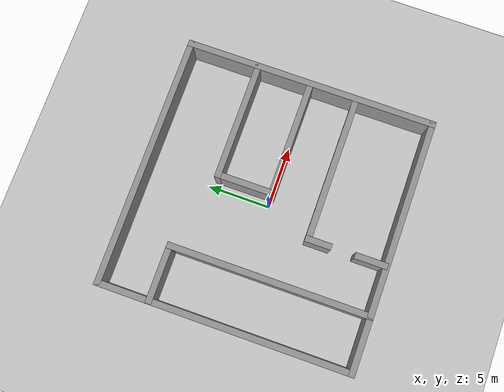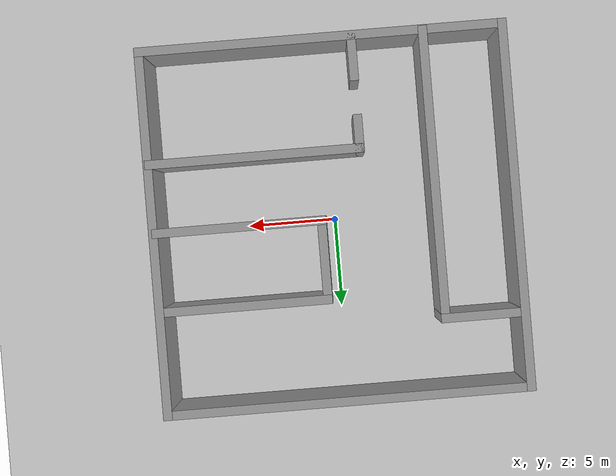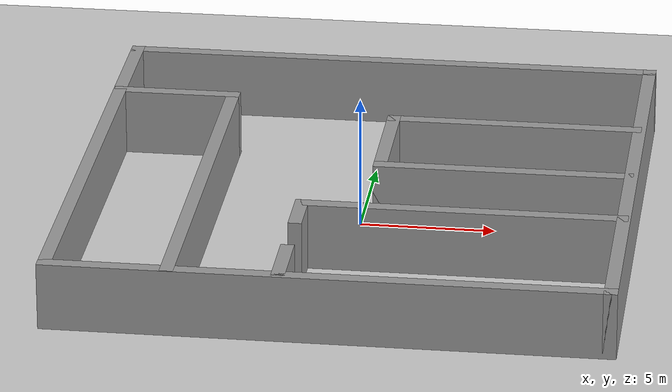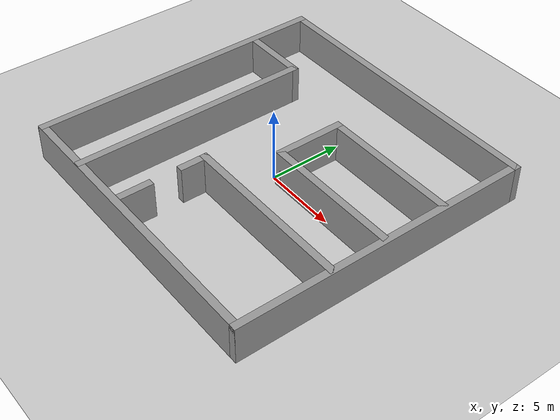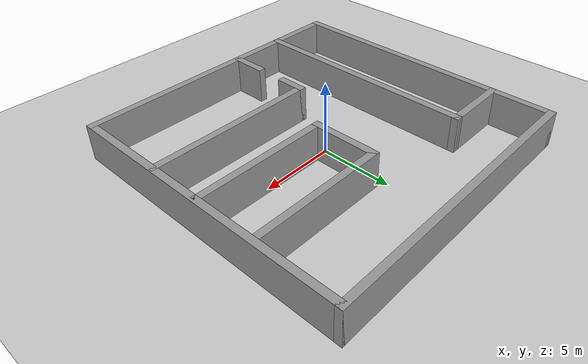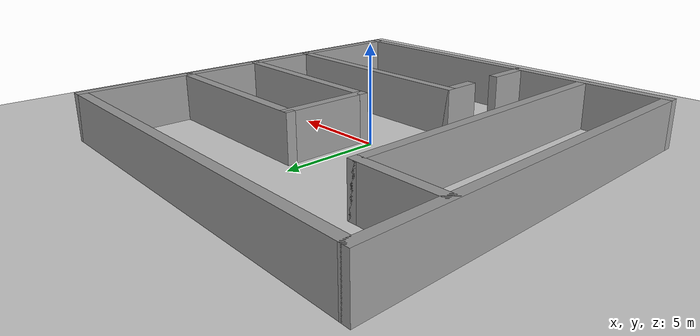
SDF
<sdf version="1.7">
 <world name="default">
  <light name="sun" type="directional">
   <pose>0 0 10 0 -0 0</pose>
   <diffuse>0.8 0.8 0.8 1</diffuse>
   <specular>0.2 0.2 0.2 1</specular>
   <attenuation>
    <range>1000</range>
    <constant>0.9</constant>
    <linear>0.01</linear>
    <quadratic>0.001</quadratic>
   </attenuation>
   <direction>-0.5 0.1 -0.9</direction>
   <spot><inner_angle>0</inner_angle><outer_angle>0</outer_angle><falloff>0</falloff></spot>
  </light>
  <model name="ground_plane">
   <static>1</static>
   <link name="link">
    <collision name="collision">
     <geometry><plane><normal>0 0 1</normal><size>100 100</size></plane></geometry>
     <surface><friction><ode><mu>100</mu><mu2>50</mu2></ode></friction></surface>
    </collision>
    <visual name="visual">
     <cast_shadows>0</cast_shadows>
     <geometry><plane><normal>0 0 1</normal><size>100 100</size></plane></geometry>
     <material>
      <script><uri>file://media/materials/scripts/gazebo.material</uri><name>Gazebo/Grey</name></script>
     </material>
    </visual>
   </link>
  </model>
  <gravity>0 0 -9.8</gravity>
  <magnetic_field>6e-06 2.3e-05 -4.2e-05</magnetic_field>
  <atmosphere type="adiabatic"/>
  <physics type="ode">
   <max_step_size>0.001</max_step_size>
   <real_time_factor>1</real_time_factor>
   <real_time_update_rate>1000</real_time_update_rate>
  </physics>
  <scene><ambient>0.4 0.4 0.4 1</ambient><background>0.7 0.7 0.7 1</background><shadows>1</shadows></scene>
  <spherical_coordinates>
   <surface_model>EARTH_WGS84</surface_model>
   <latitude_deg>0</latitude_deg>
   <longitude_deg>0</longitude_deg>
   <elevation>0</elevation>
   <heading_deg>0</heading_deg>
  </spherical_coordinates>
  <model name="demo01">
   <link name="Wall_0">
    <collision name="Wall_0_Collision">
     <geometry><box><size>20.5 0.5 2.5</size></box></geometry>
     <pose>0 0 1.25 0 -0 0</pose>
    </collision>
    <visual name="Wall_0_Visual">
     <pose>0 0 1.25 0 -0 0</pose>
     <geometry><box><size>20.5 0.5 2.5</size></box></geometry>
     <material>
      <script><uri>file://media/materials/scripts/gazebo.material</uri><name>Gazebo/Grey</name></script>
      <ambient>1 1 1 1</ambient>
     </material>
     <meta><layer>0</layer></meta>
    </visual>
    <pose>-10 0 0 0 -0 1.5708</pose>
   </link>
   <link name="Wall_10">
    <collision name="Wall_10_Collision">
     <geometry><box><size>9.60009 0.5 2.5</size></box></geometry>
     <pose>0 0 1.25 0 -0 0</pose>
    </collision>
    <visual name="Wall_10_Visual">
     <pose>0 0 1.25 0 -0 0</pose>
     <geometry><box><size>9.60009 0.5 2.5</size></box></geometry>
     <material>
      <script><uri>file://media/materials/scripts/gazebo.material</uri><name>Gazebo/Grey</name></script>
      <ambient>1 1 1 1</ambient>
     </material>
     <meta><layer>0</layer></meta>
    </visual>
    <pose>5.277 -0.01 0 0 -0 0</pose>
   </link>
   <link name="Wall_15">
    <collision name="Wall_15_Collision">
     <geometry><box><size>4.85009 0.5 2.5</size></box></geometry>
     <pose>0 0 1.25 0 -0 0</pose>
    </collision>
    <visual name="Wall_15_Visual">
     <pose>0 0 1.25 0 -0 0</pose>
     <geometry><box><size>4.85009 0.5 2.5</size></box></geometry>
     <material>
      <script><uri>file://media/materials/scripts/gazebo.material</uri><name>Gazebo/Grey</name></script>
      <ambient>1 1 1 1</ambient>
     </material>
     <meta><layer>0</layer></meta>
    </visual>
    <pose>-7.798 5.89 0 0 -0 0</pose>
   </link>
   <link name="Wall_16">
    <collision name="Wall_16_Collision">
     <geometry><box><size>16.35 0.5 2.5</size></box></geometry>
     <pose>0 0 1.25 0 -0 0</pose>
    </collision>
    <visual name="Wall_16_Visual">
     <pose>0 0 1.25 0 -0 0</pose>
     <geometry><box><size>16.35 0.5 2.5</size></box></geometry>
     <material>
      <script><uri>file://media/materials/scripts/gazebo.material</uri><name>Gazebo/Grey</name></script>
      <ambient>1 1 1 1</ambient>
     </material>
     <meta><layer>0</layer></meta>
    </visual>
    <pose>-5.623 -2.035 0 0 -0 -1.5708</pose>
   </link>
   <link name="Wall_2">
    <collision name="Wall_2_Collision">
     <geometry><box><size>20.5 0.5 2.5</size></box></geometry>
     <pose>0 0 1.25 0 -0 0</pose>
    </collision>
    <visual name="Wall_2_Visual">
     <pose>0 0 1.25 0 -0 0</pose>
     <geometry><box><size>20.5 0.5 2.5</size></box></geometry>
     <material>
      <script><uri>file://media/materials/scripts/gazebo.material</uri><name>Gazebo/Grey</name></script>
      <ambient>1 1 1 1</ambient>
     </material>
     <meta><layer>0</layer></meta>
    </visual>
    <pose>0 -10 0 0 -0 0</pose>
   </link>
   <link name="Wall_20">
    <collision name="Wall_20_Collision">
     <geometry><box><size>12.0996 0.5 2.5</size></box></geometry>
     <pose>0 0 1.25 0 -0 0</pose>
    </collision>
    <visual name="Wall_20_Visual">
     <pose>0 0 1.25 0 -0 0</pose>
     <geometry><box><size>12.0996 0.5 2.5</size></box></geometry>
     <material>
      <script><uri>file://media/materials/scripts/gazebo.material</uri><name>Gazebo/Grey</name></script>
      <ambient>1 1 1 1</ambient>
     </material>
     <meta><layer>0</layer></meta>
    </visual>
    <pose>4.114 -3.793 0 0 -0 0</pose>
   </link>
   <link name="Wall_22">
    <collision name="Wall_22_Collision">
     <geometry><box><size>2.1 0.5 2.5</size></box></geometry>
     <pose>0 0 1.25 0 -0 0</pose>
    </collision>
    <visual name="Wall_22_Visual">
     <pose>0 0 1.25 0 -0 0</pose>
     <geometry><box><size>2.1 0.5 2.5</size></box></geometry>
     <material>
      <script><uri>file://media/materials/scripts/gazebo.material</uri><name>Gazebo/Grey</name></script>
      <ambient>1 1 1 1</ambient>
     </material>
     <meta><layer>0</layer></meta>
    </visual>
    <pose>-1.686 -4.593 0 0 -0 -1.5708</pose>
   </link>
   <link name="Wall_24">
    <collision name="Wall_24_Collision">
     <geometry><box><size>2.6 0.5 2.5</size></box></geometry>
     <pose>0 0 1.25 0 -0 0</pose>
    </collision>
    <visual name="Wall_24_Visual">
     <pose>0 0 1.25 0 -0 0</pose>
     <geometry><box><size>2.6 0.5 2.5</size></box></geometry>
     <material>
      <script><uri>file://media/materials/scripts/gazebo.material</uri><name>Gazebo/Grey</name></script>
      <ambient>1 1 1 1</ambient>
     </material>
     <meta><layer>0</layer></meta>
    </visual>
    <pose>-1.686 -8.793 0 0 -0 -1.5708</pose>
   </link>
   <link name="Wall_4">
    <collision name="Wall_4_Collision">
     <geometry><box><size>20.5 0.5 2.5</size></box></geometry>
     <pose>0 0 1.25 0 -0 0</pose>
    </collision>
    <visual name="Wall_4_Visual">
     <pose>0 0 1.25 0 -0 0</pose>
     <geometry><box><size>20.5 0.5 2.5</size></box></geometry>
     <material>
      <script><uri>file://media/materials/scripts/gazebo.material</uri><name>Gazebo/Grey</name></script>
      <ambient>1 1 1 1</ambient>
     </material>
     <meta><layer>0</layer></meta>
    </visual>
    <pose>10 0 0 0 -0 1.5708</pose>
   </link>
   <link name="Wall_6">
    <collision name="Wall_6_Collision">
     <geometry><box><size>20.5 0.5 2.5</size></box></geometry>
     <pose>0 0 1.25 0 -0 0</pose>
    </collision>
    <visual name="Wall_6_Visual">
     <pose>0 0 1.25 0 -0 0</pose>
     <geometry><box><size>20.5 0.5 2.5</size></box></geometry>
     <material>
      <script><uri>file://media/materials/scripts/gazebo.material</uri><name>Gazebo/Grey</name></script>
      <ambient>1 1 1 1</ambient>
     </material>
     <meta><layer>0</layer></meta>
    </visual>
    <pose>0 10 0 0 -0 0</pose>
   </link>
   <link name="Wall_8">
    <collision name="Wall_8_Collision">
     <geometry><box><size>9.6 0.5 2.5</size></box></geometry>
     <pose>0 0 1.25 0 -0 0</pose>
    </collision>
    <visual name="Wall_8_Visual">
     <pose>0 0 1.25 0 -0 0</pose>
     <geometry><box><size>9.6 0.5 2.5</size></box></geometry>
     <material>
      <script><uri>file://media/materials/scripts/gazebo.material</uri><name>Gazebo/Grey</name></script>
      <ambient>1 1 1 1</ambient>
     </material>
     <meta><layer>0</layer></meta>
    </visual>
    <pose>5.277 4.34 0 0 -0 3.14159</pose>
   </link>
   <link name="Wall_9">
    <collision name="Wall_9_Collision">
     <geometry><box><size>4.85 0.5 2.5</size></box></geometry>
     <pose>0 0 1.25 0 -0 0</pose>
    </collision>
    <visual name="Wall_9_Visual">
     <pose>0 0 1.25 0 -0 0</pose>
     <geometry><box><size>4.85 0.5 2.5</size></box></geometry>
     <material>
      <script><uri>file://media/materials/scripts/gazebo.material</uri><name>Gazebo/Grey</name></script>
      <ambient>1 1 1 1</ambient>
     </material>
     <meta><layer>0</layer></meta>
    </visual>
    <pose>0.727 2.165 0 0 -0 -1.5708</pose>
   </link>
   <static>1</static>
  </model>
 </world>
</sdf>
